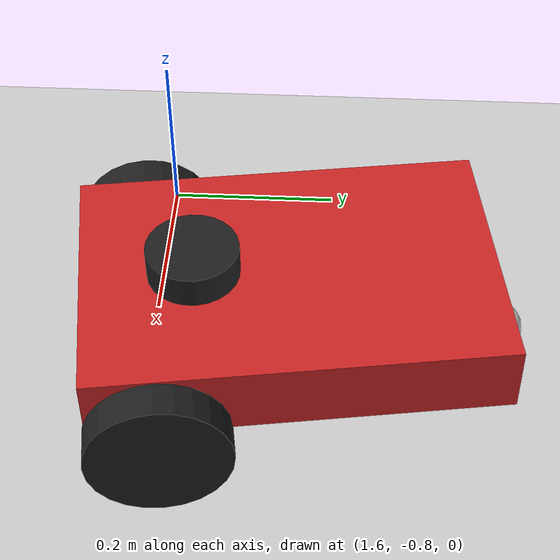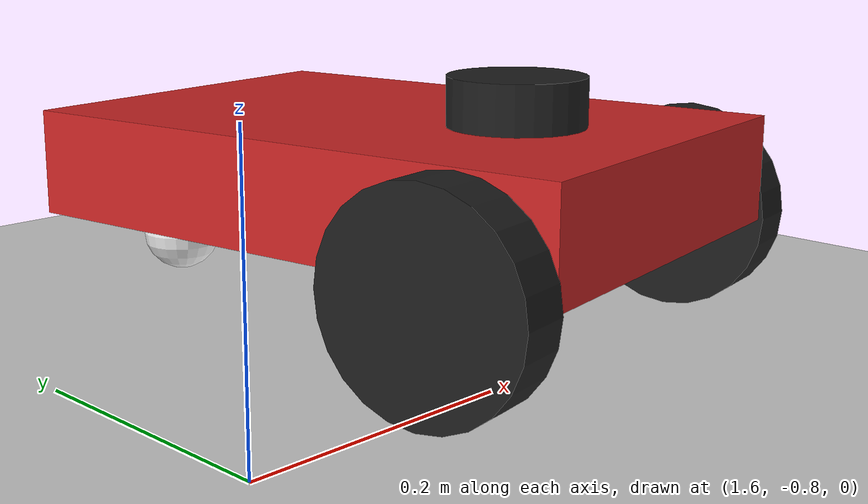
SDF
<sdf version="1.7">
 <world name="default">
  <light name="sun" type="directional">
   <pose>0 0 10 0 -0 0</pose>
   <diffuse>0.8 0.8 0.8 1</diffuse>
   <specular>0.2 0.2 0.2 1</specular>
   <attenuation>
    <range>1000</range>
    <constant>0.9</constant>
    <linear>0.01</linear>
    <quadratic>0.001</quadratic>
   </attenuation>
   <direction>-0.5 0.1 -0.9</direction>
   <spot><inner_angle>0</inner_angle><outer_angle>0</outer_angle><falloff>0</falloff></spot>
  </light>
  <model name="ground_plane">
   <static>1</static>
   <link name="link">
    <collision name="collision">
     <geometry><plane><normal>0 0 1</normal><size>100 100</size></plane></geometry>
     <surface>
      <contact><collide_bitmask>65535</collide_bitmask></contact>
      <friction><ode><mu>100</mu><mu2>50</mu2></ode></friction>
     </surface>
    </collision>
    <visual name="visual">
     <cast_shadows>0</cast_shadows>
     <geometry><plane><normal>0 0 1</normal><size>100 100</size></plane></geometry>
     <material>
      <script><uri>file://media/materials/scripts/gazebo.material</uri><name>Gazebo/Grey</name></script>
     </material>
    </visual>
   </link>
  </model>
  <gravity>0 0 -9.8</gravity>
  <magnetic_field>6e-06 2.3e-05 -4.2e-05</magnetic_field>
  <atmosphere type="adiabatic"/>
  <physics type="ode">
   <max_step_size>0.001</max_step_size>
   <real_time_factor>1</real_time_factor>
   <real_time_update_rate>1000</real_time_update_rate>
  </physics>
  <scene><ambient>0.4 0.4 0.4 1</ambient><background>0.7 0.7 0.7 1</background><shadows>1</shadows></scene>
  <audio><device>default</device></audio>
  <spherical_coordinates>
   <surface_model>EARTH_WGS84</surface_model>
   <latitude_deg>0</latitude_deg>
   <longitude_deg>0</longitude_deg>
   <elevation>0</elevation>
   <heading_deg>0</heading_deg>
  </spherical_coordinates>
  <model name="diff_bot">
   <link name="base_link">
    <inertial>
     <pose>0.196025 0 0.024659 0 -0 0</pose>
     <mass>0.8</mass>
     <inertia>
      <ixx>0.0056935</ixx>
      <ixy>0</ixy>
      <ixz>0.00394807</ixz>
      <iyy>0.0206701</iyy>
      <iyz>0</iyz>
      <izz>0.0226846</izz>
     </inertia>
    </inertial>
    <collision name="base_link_fixed_joint_lump__chassis_collision">
     <pose>0.15012 0 0.039565 0 -0 0</pose>
     <geometry><box><size>0.448 0.3 0.07913</size></box></geometry>
    </collision>
    <collision name="base_link_fixed_joint_lump__caster_wheel_collision_1">
     <pose>0.38474 0 -0.045275 0 -0 0</pose>
     <geometry><sphere><radius>0.032225</radius></sphere></geometry>
     <surface><friction><ode><mu>0.001</mu><mu2>0.001</mu2></ode></friction></surface>
    </collision>
    <collision name="base_link_fixed_joint_lump__laser_frame_collision_2">
     <pose>0.04812 0 0.09 0 -0 0</pose>
     <geometry><cylinder><length>0.05</length><radius>0.05</radius></cylinder></geometry>
    </collision>
    <visual name="base_link_fixed_joint_lump__chassis_visual">
     <pose>0.15012 0 0.039565 0 -0 0</pose>
     <geometry><box><size>0.448 0.3 0.07913</size></box></geometry>
     <material>
      <script><name>Gazebo/Red</name><uri>file://media/materials/scripts/gazebo.material</uri></script>
     </material>
    </visual>
    <visual name="base_link_fixed_joint_lump__caster_wheel_visual_1">
     <pose>0.38474 0 -0.045275 0 -0 0</pose>
     <geometry><sphere><radius>0.032225</radius></sphere></geometry>
     <material>
      <script><name>Gazebo/White</name><uri>file://media/materials/scripts/gazebo.material</uri></script>
     </material>
    </visual>
    <visual name="base_link_fixed_joint_lump__laser_frame_visual_2">
     <pose>0.04812 0 0.09 0 -0 0</pose>
     <geometry><cylinder><length>0.05</length><radius>0.05</radius></cylinder></geometry>
     <material>
      <script><name>Gazebo/Black</name><uri>file://media/materials/scripts/gazebo.material</uri></script>
     </material>
    </visual>
    <sensor name="laser" type="ray">
     <visualize>1</visualize>
     <update_rate>10</update_rate>
     <ray>
      <scan>
       <horizontal>
        <samples>360</samples>
        <min_angle>-3.14</min_angle>
        <max_angle>3.14</max_angle>
        <resolution>1</resolution>
       </horizontal>
       <vertical><samples>1</samples><min_angle>0</min_angle><max_angle>0</max_angle></vertical>
      </scan>
      <range><min>0.3</min><max>12</max></range>
     </ray>
     <plugin name="laser_controller" filename="libgazebo_ros_ray_sensor.so">
      <ros><argument>~/out:=scan</argument></ros>
      <output_type>sensor_msgs/LaserScan</output_type>
      <frame_name>laser_frame</frame_name>
     </plugin>
     <pose>0.04812 0 0.09 0 -0 0</pose>
    </sensor>
   </link>
   <joint name="left_wheel_joint" type="revolute">
    <pose relative_to="base_link">0 0.169 0 -1.5708 0 0</pose>
    <parent>base_link</parent>
    <child>left_wheel</child>
    <axis>
     <xyz>0 0 1</xyz>
     <limit><lower>-1e+16</lower><upper>1e+16</upper></limit>
     <dynamics><spring_reference>0</spring_reference><spring_stiffness>0</spring_stiffness></dynamics>
    </axis>
   </joint>
   <link name="left_wheel">
    <pose relative_to="left_wheel_joint">0 0 0 0 -0 0</pose>
    <inertial>
     <mass>0.5</mass>
     <inertia>
      <ixx>0.000813702</ixx>
      <ixy>0</ixy>
      <ixz>0</ixz>
      <iyy>0.000813702</iyy>
      <iyz>0</iyz>
      <izz>0.00150156</izz>
     </inertia>
    </inertial>
    <collision name="left_wheel_collision">
     <geometry><sphere><radius>0.0775</radius></sphere></geometry>
    </collision>
    <visual name="left_wheel_visual">
     <geometry><cylinder><length>0.03886</length><radius>0.0775</radius></cylinder></geometry>
     <material>
      <script><name>Gazebo/Black</name><uri>file://media/materials/scripts/gazebo.material</uri></script>
     </material>
    </visual>
   </link>
   <joint name="right_wheel_joint" type="revolute">
    <pose relative_to="base_link">0 -0.169 0 1.5708 -0 0</pose>
    <parent>base_link</parent>
    <child>right_wheel</child>
    <axis>
     <xyz>0 0 -1</xyz>
     <limit><lower>-1e+16</lower><upper>1e+16</upper></limit>
     <dynamics><spring_reference>0</spring_reference><spring_stiffness>0</spring_stiffness></dynamics>
    </axis>
   </joint>
   <link name="right_wheel">
    <pose relative_to="right_wheel_joint">0 0 0 0 -0 0</pose>
    <inertial>
     <mass>0.5</mass>
     <inertia>
      <ixx>0.000813702</ixx>
      <ixy>0</ixy>
      <ixz>0</ixz>
      <iyy>0.000813702</iyy>
      <iyz>0</iyz>
      <izz>0.00150156</izz>
     </inertia>
    </inertial>
    <collision name="right_wheel_collision">
     <geometry><sphere><radius>0.0775</radius></sphere></geometry>
    </collision>
    <visual name="right_wheel_visual">
     <geometry><cylinder><length>0.03886</length><radius>0.0775</radius></cylinder></geometry>
     <material>
      <script><name>Gazebo/Black</name><uri>file://media/materials/scripts/gazebo.material</uri></script>
     </material>
    </visual>
   </link>
   <static>0</static>
   <plugin name="diff_drive" filename="libgazebo_ros_diff_drive.so">
    <left_joint>left_wheel_joint</left_joint>
    <right_joint>right_wheel_joint</right_joint>
    <wheel_separation>0.338</wheel_separation>
    <wheel_diameter>0.155</wheel_diameter>
    <max_wheel_torque>200</max_wheel_torque>
    <max_wheel_acceleration>10.0</max_wheel_acceleration>
    <odometry_frame>odom</odometry_frame>
    <robot_base_frame>base_link</robot_base_frame>
    <publish_odom>1</publish_odom>
    <publish_odom_tf>1</publish_odom_tf>
    <publish_wheel_tf>1</publish_wheel_tf>
   </plugin>
   <pose>1.89987 -0.787039 0.077498 1.1e-05 -6e-06 1.72113</pose>
  </model>
 </world>
</sdf>
